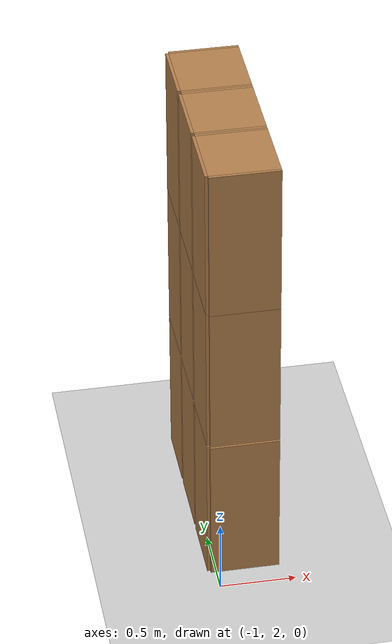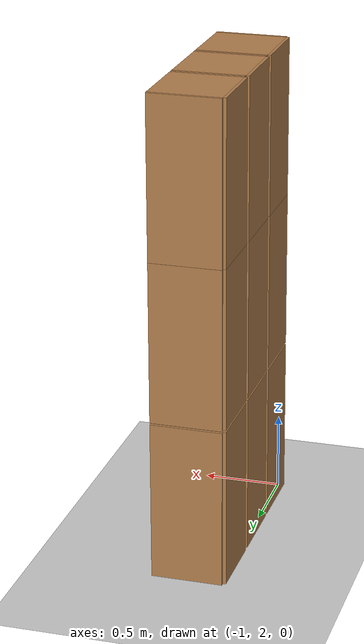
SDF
<sdf version="1.6">
 <world name="default">
  <model name="ground_plane">
   <static>1</static>
   <link name="link">
    <collision name="collision">
     <geometry><plane><normal>0 0 1</normal><size>100 100</size></plane></geometry>
     <surface>
      <contact><collide_bitmask>65535</collide_bitmask></contact>
      <friction><ode><mu>100</mu><mu2>50</mu2></ode></friction>
     </surface>
    </collision>
    <visual name="visual">
     <cast_shadows>0</cast_shadows>
     <geometry><plane><normal>0 0 1</normal><size>100 100</size></plane></geometry>
     <material>
      <script><uri>file://media/materials/scripts/gazebo.material</uri><name>Gazebo/Grey</name></script>
     </material>
    </visual>
   </link>
  </model>
  <model name="Locker18_clone_4_clone_2_clone_1_clone_clone_clone_2_clone_clone_1">
   <model name="Locker18">
    <model name="Locker3">
     <model name="cabinet">
      <static>1</static>
      <link name="cabinet_bottom_plate">
       <inertial>
        <pose>0 0 -1 0 -0 0</pose>
        <inertia><ixx>2.05</ixx><ixy>0</ixy><ixz>0</ixz><iyy>2.05</iyy><iyz>0</iyz><izz>2.05</izz></inertia>
        <mass>25</mass>
       </inertial>
       <collision name="cabinet_bottom_plate_geom">
        <pose>0 0 0.01 0 -0 0</pose>
        <geometry><box><size>0.45 0.45 0.02</size></box></geometry>
       </collision>
       <visual name="cabinet_bottom_plate_geom_visual">
        <pose>0 0 0.01 0 -0 0</pose>
        <geometry><box><size>0.45 0.45 0.02</size></box></geometry>
        <material>
         <script><uri>file://media/materials/scripts/gazebo.material</uri><name>Gazebo/Wood</name></script>
        </material>
       </visual>
       <collision name="cabinet_bottom_plate_geom_cabinet_back_plate">
        <pose>0.235 0 0.51 0 -0 0</pose>
        <geometry><box><size>0.02 0.45 1.02</size></box></geometry>
       </collision>
       <visual name="cabinet_bottom_plate_geom_cabinet_back_plate_visual">
        <pose>0.235 0 0.51 0 -0 0</pose>
        <geometry><box><size>0.02 0.45 1.02</size></box></geometry>
        <material>
         <script><uri>file://media/materials/scripts/gazebo.material</uri><name>Gazebo/Wood</name></script>
        </material>
       </visual>
       <collision name="cabinet_bottom_plate_geom_cabinet_left_plate">
        <pose>0 0.235 0.51 0 -0 0</pose>
        <geometry><box><size>0.45 0.02 1.02</size></box></geometry>
       </collision>
       <visual name="cabinet_bottom_plate_geom_cabinet_left_plate_visual">
        <pose>0 0.235 0.51 0 -0 0</pose>
        <geometry><box><size>0.45 0.02 1.02</size></box></geometry>
        <material>
         <script><uri>file://media/materials/scripts/gazebo.material</uri><name>Gazebo/Wood</name></script>
        </material>
       </visual>
       <collision name="cabinet_bottom_plate_geom_cabinet_middle_plate">
        <pose>0 0 0.51 0 -0 0</pose>
        <geometry><box><size>0.45 0.45 0.02</size></box></geometry>
       </collision>
       <visual name="cabinet_bottom_plate_geom_cabinet_middle_plate_visual">
        <pose>0 0 0.51 0 -0 0</pose>
        <geometry><box><size>0.45 0.45 0.02</size></box></geometry>
        <material>
         <script><uri>file://media/materials/scripts/gazebo.material</uri><name>Gazebo/Wood</name></script>
        </material>
       </visual>
       <collision name="cabinet_bottom_plate_geom_cabinet_right_plate">
        <pose>0 -0.235 0.51 0 -0 0</pose>
        <geometry><box><size>0.45 0.02 1.02</size></box></geometry>
       </collision>
       <visual name="cabinet_bottom_plate_geom_cabinet_right_plate_visual">
        <pose>0 -0.235 0.51 0 -0 0</pose>
        <geometry><box><size>0.45 0.02 1.02</size></box></geometry>
        <material>
         <script><uri>file://media/materials/scripts/gazebo.material</uri><name>Gazebo/Wood</name></script>
        </material>
       </visual>
       <collision name="cabinet_bottom_plate_geom_cabinet_top_plate">
        <pose>0 0 1.01 0 -0 0</pose>
        <geometry><box><size>0.45 0.45 0.02</size></box></geometry>
       </collision>
       <visual name="cabinet_bottom_plate_geom_cabinet_top_plate_visual">
        <pose>0 0 1.01 0 -0 0</pose>
        <geometry><box><size>0.45 0.45 0.02</size></box></geometry>
        <material>
         <script><uri>file://media/materials/scripts/gazebo.material</uri><name>Gazebo/Wood</name></script>
        </material>
       </visual>
      </link>
      <pose>-0.676968 1.45758 0 0 -0 0</pose>
     </model>
     <model name="cabinet_clone">
      <static>1</static>
      <link name="cabinet_bottom_plate">
       <inertial>
        <pose>0 0 -1 0 -0 0</pose>
        <inertia><ixx>2.05</ixx><ixy>0</ixy><ixz>0</ixz><iyy>2.05</iyy><iyz>0</iyz><izz>2.05</izz></inertia>
        <mass>25</mass>
       </inertial>
       <collision name="cabinet_bottom_plate_geom">
        <pose>0 0 0.01 0 -0 0</pose>
        <geometry><box><size>0.45 0.45 0.02</size></box></geometry>
       </collision>
       <visual name="cabinet_bottom_plate_geom_visual">
        <pose>0 0 0.01 0 -0 0</pose>
        <geometry><box><size>0.45 0.45 0.02</size></box></geometry>
        <material>
         <script><uri>file://media/materials/scripts/gazebo.material</uri><name>Gazebo/Wood</name></script>
        </material>
       </visual>
       <collision name="cabinet_bottom_plate_geom_cabinet_back_plate">
        <pose>0.235 0 0.51 0 -0 0</pose>
        <geometry><box><size>0.02 0.45 1.02</size></box></geometry>
       </collision>
       <visual name="cabinet_bottom_plate_geom_cabinet_back_plate_visual">
        <pose>0.235 0 0.51 0 -0 0</pose>
        <geometry><box><size>0.02 0.45 1.02</size></box></geometry>
        <material>
         <script><uri>file://media/materials/scripts/gazebo.material</uri><name>Gazebo/Wood</name></script>
        </material>
       </visual>
       <collision name="cabinet_bottom_plate_geom_cabinet_left_plate">
        <pose>0 0.235 0.51 0 -0 0</pose>
        <geometry><box><size>0.45 0.02 1.02</size></box></geometry>
       </collision>
       <visual name="cabinet_bottom_plate_geom_cabinet_left_plate_visual">
        <pose>0 0.235 0.51 0 -0 0</pose>
        <geometry><box><size>0.45 0.02 1.02</size></box></geometry>
        <material>
         <script><uri>file://media/materials/scripts/gazebo.material</uri><name>Gazebo/Wood</name></script>
        </material>
       </visual>
       <collision name="cabinet_bottom_plate_geom_cabinet_middle_plate">
        <pose>0 0 0.51 0 -0 0</pose>
        <geometry><box><size>0.45 0.45 0.02</size></box></geometry>
       </collision>
       <visual name="cabinet_bottom_plate_geom_cabinet_middle_plate_visual">
        <pose>0 0 0.51 0 -0 0</pose>
        <geometry><box><size>0.45 0.45 0.02</size></box></geometry>
        <material>
         <script><uri>file://media/materials/scripts/gazebo.material</uri><name>Gazebo/Wood</name></script>
        </material>
       </visual>
       <collision name="cabinet_bottom_plate_geom_cabinet_right_plate">
        <pose>0 -0.235 0.51 0 -0 0</pose>
        <geometry><box><size>0.45 0.02 1.02</size></box></geometry>
       </collision>
       <visual name="cabinet_bottom_plate_geom_cabinet_right_plate_visual">
        <pose>0 -0.235 0.51 0 -0 0</pose>
        <geometry><box><size>0.45 0.02 1.02</size></box></geometry>
        <material>
         <script><uri>file://media/materials/scripts/gazebo.material</uri><name>Gazebo/Wood</name></script>
        </material>
       </visual>
       <collision name="cabinet_bottom_plate_geom_cabinet_top_plate">
        <pose>0 0 1.01 0 -0 0</pose>
        <geometry><box><size>0.45 0.45 0.02</size></box></geometry>
       </collision>
       <visual name="cabinet_bottom_plate_geom_cabinet_top_plate_visual">
        <pose>0 0 1.01 0 -0 0</pose>
        <geometry><box><size>0.45 0.45 0.02</size></box></geometry>
        <material>
         <script><uri>file://media/materials/scripts/gazebo.material</uri><name>Gazebo/Wood</name></script>
        </material>
       </visual>
      </link>
      <pose>-0.676968 0.970971 0 0 -0 0</pose>
     </model>
     <model name="cabinet_clone_0">
      <static>1</static>
      <link name="cabinet_bottom_plate">
       <inertial>
        <pose>0 0 -1 0 -0 0</pose>
        <inertia><ixx>2.05</ixx><ixy>0</ixy><ixz>0</ixz><iyy>2.05</iyy><iyz>0</iyz><izz>2.05</izz></inertia>
        <mass>25</mass>
       </inertial>
       <collision name="cabinet_bottom_plate_geom">
        <pose>0 0 0.01 0 -0 0</pose>
        <geometry><box><size>0.45 0.45 0.02</size></box></geometry>
       </collision>
       <visual name="cabinet_bottom_plate_geom_visual">
        <pose>0 0 0.01 0 -0 0</pose>
        <geometry><box><size>0.45 0.45 0.02</size></box></geometry>
        <material>
         <script><uri>file://media/materials/scripts/gazebo.material</uri><name>Gazebo/Wood</name></script>
        </material>
       </visual>
       <collision name="cabinet_bottom_plate_geom_cabinet_back_plate">
        <pose>0.235 0 0.51 0 -0 0</pose>
        <geometry><box><size>0.02 0.45 1.02</size></box></geometry>
       </collision>
       <visual name="cabinet_bottom_plate_geom_cabinet_back_plate_visual">
        <pose>0.235 0 0.51 0 -0 0</pose>
        <geometry><box><size>0.02 0.45 1.02</size></box></geometry>
        <material>
         <script><uri>file://media/materials/scripts/gazebo.material</uri><name>Gazebo/Wood</name></script>
        </material>
       </visual>
       <collision name="cabinet_bottom_plate_geom_cabinet_left_plate">
        <pose>0 0.235 0.51 0 -0 0</pose>
        <geometry><box><size>0.45 0.02 1.02</size></box></geometry>
       </collision>
       <visual name="cabinet_bottom_plate_geom_cabinet_left_plate_visual">
        <pose>0 0.235 0.51 0 -0 0</pose>
        <geometry><box><size>0.45 0.02 1.02</size></box></geometry>
        <material>
         <script><uri>file://media/materials/scripts/gazebo.material</uri><name>Gazebo/Wood</name></script>
        </material>
       </visual>
       <collision name="cabinet_bottom_plate_geom_cabinet_middle_plate">
        <pose>0 0 0.51 0 -0 0</pose>
        <geometry><box><size>0.45 0.45 0.02</size></box></geometry>
       </collision>
       <visual name="cabinet_bottom_plate_geom_cabinet_middle_plate_visual">
        <pose>0 0 0.51 0 -0 0</pose>
        <geometry><box><size>0.45 0.45 0.02</size></box></geometry>
        <material>
         <script><uri>file://media/materials/scripts/gazebo.material</uri><name>Gazebo/Wood</name></script>
        </material>
       </visual>
       <collision name="cabinet_bottom_plate_geom_cabinet_right_plate">
        <pose>0 -0.235 0.51 0 -0 0</pose>
        <geometry><box><size>0.45 0.02 1.02</size></box></geometry>
       </collision>
       <visual name="cabinet_bottom_plate_geom_cabinet_right_plate_visual">
        <pose>0 -0.235 0.51 0 -0 0</pose>
        <geometry><box><size>0.45 0.02 1.02</size></box></geometry>
        <material>
         <script><uri>file://media/materials/scripts/gazebo.material</uri><name>Gazebo/Wood</name></script>
        </material>
       </visual>
       <collision name="cabinet_bottom_plate_geom_cabinet_top_plate">
        <pose>0 0 1.01 0 -0 0</pose>
        <geometry><box><size>0.45 0.45 0.02</size></box></geometry>
       </collision>
       <visual name="cabinet_bottom_plate_geom_cabinet_top_plate_visual">
        <pose>0 0 1.01 0 -0 0</pose>
        <geometry><box><size>0.45 0.45 0.02</size></box></geometry>
        <material>
         <script><uri>file://media/materials/scripts/gazebo.material</uri><name>Gazebo/Wood</name></script>
        </material>
       </visual>
      </link>
      <pose>-0.676968 0.48391 0 0 -0 0</pose>
     </model>
     <static>0</static>
     <pose>0 3e-06 -1.02763 0 -0 0</pose>
    </model>
    <model name="Locker3_clone">
     <model name="cabinet">
      <static>1</static>
      <link name="cabinet_bottom_plate">
       <inertial>
        <pose>0 0 -1 0 -0 0</pose>
        <inertia><ixx>2.05</ixx><ixy>0</ixy><ixz>0</ixz><iyy>2.05</iyy><iyz>0</iyz><izz>2.05</izz></inertia>
        <mass>25</mass>
       </inertial>
       <collision name="cabinet_bottom_plate_geom">
        <pose>0 0 0.01 0 -0 0</pose>
        <geometry><box><size>0.45 0.45 0.02</size></box></geometry>
       </collision>
       <visual name="cabinet_bottom_plate_geom_visual">
        <pose>0 0 0.01 0 -0 0</pose>
        <geometry><box><size>0.45 0.45 0.02</size></box></geometry>
        <material>
         <script><uri>file://media/materials/scripts/gazebo.material</uri><name>Gazebo/Wood</name></script>
        </material>
       </visual>
       <collision name="cabinet_bottom_plate_geom_cabinet_back_plate">
        <pose>0.235 0 0.51 0 -0 0</pose>
        <geometry><box><size>0.02 0.45 1.02</size></box></geometry>
       </collision>
       <visual name="cabinet_bottom_plate_geom_cabinet_back_plate_visual">
        <pose>0.235 0 0.51 0 -0 0</pose>
        <geometry><box><size>0.02 0.45 1.02</size></box></geometry>
        <material>
         <script><uri>file://media/materials/scripts/gazebo.material</uri><name>Gazebo/Wood</name></script>
        </material>
       </visual>
       <collision name="cabinet_bottom_plate_geom_cabinet_left_plate">
        <pose>0 0.235 0.51 0 -0 0</pose>
        <geometry><box><size>0.45 0.02 1.02</size></box></geometry>
       </collision>
       <visual name="cabinet_bottom_plate_geom_cabinet_left_plate_visual">
        <pose>0 0.235 0.51 0 -0 0</pose>
        <geometry><box><size>0.45 0.02 1.02</size></box></geometry>
        <material>
         <script><uri>file://media/materials/scripts/gazebo.material</uri><name>Gazebo/Wood</name></script>
        </material>
       </visual>
       <collision name="cabinet_bottom_plate_geom_cabinet_middle_plate">
        <pose>0 0 0.51 0 -0 0</pose>
        <geometry><box><size>0.45 0.45 0.02</size></box></geometry>
       </collision>
       <visual name="cabinet_bottom_plate_geom_cabinet_middle_plate_visual">
        <pose>0 0 0.51 0 -0 0</pose>
        <geometry><box><size>0.45 0.45 0.02</size></box></geometry>
        <material>
         <script><uri>file://media/materials/scripts/gazebo.material</uri><name>Gazebo/Wood</name></script>
        </material>
       </visual>
       <collision name="cabinet_bottom_plate_geom_cabinet_right_plate">
        <pose>0 -0.235 0.51 0 -0 0</pose>
        <geometry><box><size>0.45 0.02 1.02</size></box></geometry>
       </collision>
       <visual name="cabinet_bottom_plate_geom_cabinet_right_plate_visual">
        <pose>0 -0.235 0.51 0 -0 0</pose>
        <geometry><box><size>0.45 0.02 1.02</size></box></geometry>
        <material>
         <script><uri>file://media/materials/scripts/gazebo.material</uri><name>Gazebo/Wood</name></script>
        </material>
       </visual>
       <collision name="cabinet_bottom_plate_geom_cabinet_top_plate">
        <pose>0 0 1.01 0 -0 0</pose>
        <geometry><box><size>0.45 0.45 0.02</size></box></geometry>
       </collision>
       <visual name="cabinet_bottom_plate_geom_cabinet_top_plate_visual">
        <pose>0 0 1.01 0 -0 0</pose>
        <geometry><box><size>0.45 0.45 0.02</size></box></geometry>
        <material>
         <script><uri>file://media/materials/scripts/gazebo.material</uri><name>Gazebo/Wood</name></script>
        </material>
       </visual>
      </link>
      <pose>-0.676968 1.45758 0 0 -0 0</pose>
     </model>
     <model name="cabinet_clone">
      <static>1</static>
      <link name="cabinet_bottom_plate">
       <inertial>
        <pose>0 0 -1 0 -0 0</pose>
        <inertia><ixx>2.05</ixx><ixy>0</ixy><ixz>0</ixz><iyy>2.05</iyy><iyz>0</iyz><izz>2.05</izz></inertia>
        <mass>25</mass>
       </inertial>
       <collision name="cabinet_bottom_plate_geom">
        <pose>0 0 0.01 0 -0 0</pose>
        <geometry><box><size>0.45 0.45 0.02</size></box></geometry>
       </collision>
       <visual name="cabinet_bottom_plate_geom_visual">
        <pose>0 0 0.01 0 -0 0</pose>
        <geometry><box><size>0.45 0.45 0.02</size></box></geometry>
        <material>
         <script><uri>file://media/materials/scripts/gazebo.material</uri><name>Gazebo/Wood</name></script>
        </material>
       </visual>
       <collision name="cabinet_bottom_plate_geom_cabinet_back_plate">
        <pose>0.235 0 0.51 0 -0 0</pose>
        <geometry><box><size>0.02 0.45 1.02</size></box></geometry>
       </collision>
       <visual name="cabinet_bottom_plate_geom_cabinet_back_plate_visual">
        <pose>0.235 0 0.51 0 -0 0</pose>
        <geometry><box><size>0.02 0.45 1.02</size></box></geometry>
        <material>
         <script><uri>file://media/materials/scripts/gazebo.material</uri><name>Gazebo/Wood</name></script>
        </material>
       </visual>
       <collision name="cabinet_bottom_plate_geom_cabinet_left_plate">
        <pose>0 0.235 0.51 0 -0 0</pose>
        <geometry><box><size>0.45 0.02 1.02</size></box></geometry>
       </collision>
       <visual name="cabinet_bottom_plate_geom_cabinet_left_plate_visual">
        <pose>0 0.235 0.51 0 -0 0</pose>
        <geometry><box><size>0.45 0.02 1.02</size></box></geometry>
        <material>
         <script><uri>file://media/materials/scripts/gazebo.material</uri><name>Gazebo/Wood</name></script>
        </material>
       </visual>
       <collision name="cabinet_bottom_plate_geom_cabinet_middle_plate">
        <pose>0 0 0.51 0 -0 0</pose>
        <geometry><box><size>0.45 0.45 0.02</size></box></geometry>
       </collision>
       <visual name="cabinet_bottom_plate_geom_cabinet_middle_plate_visual">
        <pose>0 0 0.51 0 -0 0</pose>
        <geometry><box><size>0.45 0.45 0.02</size></box></geometry>
        <material>
         <script><uri>file://media/materials/scripts/gazebo.material</uri><name>Gazebo/Wood</name></script>
        </material>
       </visual>
       <collision name="cabinet_bottom_plate_geom_cabinet_right_plate">
        <pose>0 -0.235 0.51 0 -0 0</pose>
        <geometry><box><size>0.45 0.02 1.02</size></box></geometry>
       </collision>
       <visual name="cabinet_bottom_plate_geom_cabinet_right_plate_visual">
        <pose>0 -0.235 0.51 0 -0 0</pose>
        <geometry><box><size>0.45 0.02 1.02</size></box></geometry>
        <material>
         <script><uri>file://media/materials/scripts/gazebo.material</uri><name>Gazebo/Wood</name></script>
        </material>
       </visual>
       <collision name="cabinet_bottom_plate_geom_cabinet_top_plate">
        <pose>0 0 1.01 0 -0 0</pose>
        <geometry><box><size>0.45 0.45 0.02</size></box></geometry>
       </collision>
       <visual name="cabinet_bottom_plate_geom_cabinet_top_plate_visual">
        <pose>0 0 1.01 0 -0 0</pose>
        <geometry><box><size>0.45 0.45 0.02</size></box></geometry>
        <material>
         <script><uri>file://media/materials/scripts/gazebo.material</uri><name>Gazebo/Wood</name></script>
        </material>
       </visual>
      </link>
      <pose>-0.676968 0.970971 0 0 -0 0</pose>
     </model>
     <model name="cabinet_clone_0">
      <static>1</static>
      <link name="cabinet_bottom_plate">
       <inertial>
        <pose>0 0 -1 0 -0 0</pose>
        <inertia><ixx>2.05</ixx><ixy>0</ixy><ixz>0</ixz><iyy>2.05</iyy><iyz>0</iyz><izz>2.05</izz></inertia>
        <mass>25</mass>
       </inertial>
       <collision name="cabinet_bottom_plate_geom">
        <pose>0 0 0.01 0 -0 0</pose>
        <geometry><box><size>0.45 0.45 0.02</size></box></geometry>
       </collision>
       <visual name="cabinet_bottom_plate_geom_visual">
        <pose>0 0 0.01 0 -0 0</pose>
        <geometry><box><size>0.45 0.45 0.02</size></box></geometry>
        <material>
         <script><uri>file://media/materials/scripts/gazebo.material</uri><name>Gazebo/Wood</name></script>
        </material>
       </visual>
       <collision name="cabinet_bottom_plate_geom_cabinet_back_plate">
        <pose>0.235 0 0.51 0 -0 0</pose>
        <geometry><box><size>0.02 0.45 1.02</size></box></geometry>
       </collision>
       <visual name="cabinet_bottom_plate_geom_cabinet_back_plate_visual">
        <pose>0.235 0 0.51 0 -0 0</pose>
        <geometry><box><size>0.02 0.45 1.02</size></box></geometry>
        <material>
         <script><uri>file://media/materials/scripts/gazebo.material</uri><name>Gazebo/Wood</name></script>
        </material>
       </visual>
       <collision name="cabinet_bottom_plate_geom_cabinet_left_plate">
        <pose>0 0.235 0.51 0 -0 0</pose>
        <geometry><box><size>0.45 0.02 1.02</size></box></geometry>
       </collision>
       <visual name="cabinet_bottom_plate_geom_cabinet_left_plate_visual">
        <pose>0 0.235 0.51 0 -0 0</pose>
        <geometry><box><size>0.45 0.02 1.02</size></box></geometry>
        <material>
         <script><uri>file://media/materials/scripts/gazebo.material</uri><name>Gazebo/Wood</name></script>
        </material>
       </visual>
       <collision name="cabinet_bottom_plate_geom_cabinet_middle_plate">
        <pose>0 0 0.51 0 -0 0</pose>
        <geometry><box><size>0.45 0.45 0.02</size></box></geometry>
       </collision>
       <visual name="cabinet_bottom_plate_geom_cabinet_middle_plate_visual">
        <pose>0 0 0.51 0 -0 0</pose>
        <geometry><box><size>0.45 0.45 0.02</size></box></geometry>
        <material>
         <script><uri>file://media/materials/scripts/gazebo.material</uri><name>Gazebo/Wood</name></script>
        </material>
       </visual>
       <collision name="cabinet_bottom_plate_geom_cabinet_right_plate">
        <pose>0 -0.235 0.51 0 -0 0</pose>
        <geometry><box><size>0.45 0.02 1.02</size></box></geometry>
       </collision>
       <visual name="cabinet_bottom_plate_geom_cabinet_right_plate_visual">
        <pose>0 -0.235 0.51 0 -0 0</pose>
        <geometry><box><size>0.45 0.02 1.02</size></box></geometry>
        <material>
         <script><uri>file://media/materials/scripts/gazebo.material</uri><name>Gazebo/Wood</name></script>
        </material>
       </visual>
       <collision name="cabinet_bottom_plate_geom_cabinet_top_plate">
        <pose>0 0 1.01 0 -0 0</pose>
        <geometry><box><size>0.45 0.45 0.02</size></box></geometry>
       </collision>
       <visual name="cabinet_bottom_plate_geom_cabinet_top_plate_visual">
        <pose>0 0 1.01 0 -0 0</pose>
        <geometry><box><size>0.45 0.45 0.02</size></box></geometry>
        <material>
         <script><uri>file://media/materials/scripts/gazebo.material</uri><name>Gazebo/Wood</name></script>
        </material>
       </visual>
      </link>
      <pose>-0.676968 0.48391 0 0 -0 0</pose>
     </model>
     <static>0</static>
     <pose>0 3e-06 0.003717 0 -0 0</pose>
    </model>
    <model name="Locker3_clone_clone">
     <model name="cabinet">
      <static>1</static>
      <link name="cabinet_bottom_plate">
       <inertial>
        <pose>0 0 -1 0 -0 0</pose>
        <inertia><ixx>2.05</ixx><ixy>0</ixy><ixz>0</ixz><iyy>2.05</iyy><iyz>0</iyz><izz>2.05</izz></inertia>
        <mass>25</mass>
       </inertial>
       <collision name="cabinet_bottom_plate_geom">
        <pose>0 0 0.01 0 -0 0</pose>
        <geometry><box><size>0.45 0.45 0.02</size></box></geometry>
       </collision>
       <visual name="cabinet_bottom_plate_geom_visual">
        <pose>0 0 0.01 0 -0 0</pose>
        <geometry><box><size>0.45 0.45 0.02</size></box></geometry>
        <material>
         <script><uri>file://media/materials/scripts/gazebo.material</uri><name>Gazebo/Wood</name></script>
        </material>
       </visual>
       <collision name="cabinet_bottom_plate_geom_cabinet_back_plate">
        <pose>0.235 0 0.51 0 -0 0</pose>
        <geometry><box><size>0.02 0.45 1.02</size></box></geometry>
       </collision>
       <visual name="cabinet_bottom_plate_geom_cabinet_back_plate_visual">
        <pose>0.235 0 0.51 0 -0 0</pose>
        <geometry><box><size>0.02 0.45 1.02</size></box></geometry>
        <material>
         <script><uri>file://media/materials/scripts/gazebo.material</uri><name>Gazebo/Wood</name></script>
        </material>
       </visual>
       <collision name="cabinet_bottom_plate_geom_cabinet_left_plate">
        <pose>0 0.235 0.51 0 -0 0</pose>
        <geometry><box><size>0.45 0.02 1.02</size></box></geometry>
       </collision>
       <visual name="cabinet_bottom_plate_geom_cabinet_left_plate_visual">
        <pose>0 0.235 0.51 0 -0 0</pose>
        <geometry><box><size>0.45 0.02 1.02</size></box></geometry>
        <material>
         <script><uri>file://media/materials/scripts/gazebo.material</uri><name>Gazebo/Wood</name></script>
        </material>
       </visual>
       <collision name="cabinet_bottom_plate_geom_cabinet_middle_plate">
        <pose>0 0 0.51 0 -0 0</pose>
        <geometry><box><size>0.45 0.45 0.02</size></box></geometry>
       </collision>
       <visual name="cabinet_bottom_plate_geom_cabinet_middle_plate_visual">
        <pose>0 0 0.51 0 -0 0</pose>
        <geometry><box><size>0.45 0.45 0.02</size></box></geometry>
        <material>
         <script><uri>file://media/materials/scripts/gazebo.material</uri><name>Gazebo/Wood</name></script>
        </material>
       </visual>
       <collision name="cabinet_bottom_plate_geom_cabinet_right_plate">
        <pose>0 -0.235 0.51 0 -0 0</pose>
        <geometry><box><size>0.45 0.02 1.02</size></box></geometry>
       </collision>
       <visual name="cabinet_bottom_plate_geom_cabinet_right_plate_visual">
        <pose>0 -0.235 0.51 0 -0 0</pose>
        <geometry><box><size>0.45 0.02 1.02</size></box></geometry>
        <material>
         <script><uri>file://media/materials/scripts/gazebo.material</uri><name>Gazebo/Wood</name></script>
        </material>
       </visual>
       <collision name="cabinet_bottom_plate_geom_cabinet_top_plate">
        <pose>0 0 1.01 0 -0 0</pose>
        <geometry><box><size>0.45 0.45 0.02</size></box></geometry>
       </collision>
       <visual name="cabinet_bottom_plate_geom_cabinet_top_plate_visual">
        <pose>0 0 1.01 0 -0 0</pose>
        <geometry><box><size>0.45 0.45 0.02</size></box></geometry>
        <material>
         <script><uri>file://media/materials/scripts/gazebo.material</uri><name>Gazebo/Wood</name></script>
        </material>
       </visual>
      </link>
      <pose>-0.676968 1.45758 0 0 -0 0</pose>
     </model>
     <model name="cabinet_clone">
      <static>1</static>
      <link name="cabinet_bottom_plate">
       <inertial>
        <pose>0 0 -1 0 -0 0</pose>
        <inertia><ixx>2.05</ixx><ixy>0</ixy><ixz>0</ixz><iyy>2.05</iyy><iyz>0</iyz><izz>2.05</izz></inertia>
        <mass>25</mass>
       </inertial>
       <collision name="cabinet_bottom_plate_geom">
        <pose>0 0 0.01 0 -0 0</pose>
        <geometry><box><size>0.45 0.45 0.02</size></box></geometry>
       </collision>
       <visual name="cabinet_bottom_plate_geom_visual">
        <pose>0 0 0.01 0 -0 0</pose>
        <geometry><box><size>0.45 0.45 0.02</size></box></geometry>
        <material>
         <script><uri>file://media/materials/scripts/gazebo.material</uri><name>Gazebo/Wood</name></script>
        </material>
       </visual>
       <collision name="cabinet_bottom_plate_geom_cabinet_back_plate">
        <pose>0.235 0 0.51 0 -0 0</pose>
        <geometry><box><size>0.02 0.45 1.02</size></box></geometry>
       </collision>
       <visual name="cabinet_bottom_plate_geom_cabinet_back_plate_visual">
        <pose>0.235 0 0.51 0 -0 0</pose>
        <geometry><box><size>0.02 0.45 1.02</size></box></geometry>
        <material>
         <script><uri>file://media/materials/scripts/gazebo.material</uri><name>Gazebo/Wood</name></script>
        </material>
       </visual>
       <collision name="cabinet_bottom_plate_geom_cabinet_left_plate">
        <pose>0 0.235 0.51 0 -0 0</pose>
        <geometry><box><size>0.45 0.02 1.02</size></box></geometry>
       </collision>
       <visual name="cabinet_bottom_plate_geom_cabinet_left_plate_visual">
        <pose>0 0.235 0.51 0 -0 0</pose>
        <geometry><box><size>0.45 0.02 1.02</size></box></geometry>
        <material>
         <script><uri>file://media/materials/scripts/gazebo.material</uri><name>Gazebo/Wood</name></script>
        </material>
       </visual>
       <collision name="cabinet_bottom_plate_geom_cabinet_middle_plate">
        <pose>0 0 0.51 0 -0 0</pose>
        <geometry><box><size>0.45 0.45 0.02</size></box></geometry>
       </collision>
       <visual name="cabinet_bottom_plate_geom_cabinet_middle_plate_visual">
        <pose>0 0 0.51 0 -0 0</pose>
        <geometry><box><size>0.45 0.45 0.02</size></box></geometry>
        <material>
         <script><uri>file://media/materials/scripts/gazebo.material</uri><name>Gazebo/Wood</name></script>
        </material>
       </visual>
       <collision name="cabinet_bottom_plate_geom_cabinet_right_plate">
        <pose>0 -0.235 0.51 0 -0 0</pose>
        <geometry><box><size>0.45 0.02 1.02</size></box></geometry>
       </collision>
       <visual name="cabinet_bottom_plate_geom_cabinet_right_plate_visual">
        <pose>0 -0.235 0.51 0 -0 0</pose>
        <geometry><box><size>0.45 0.02 1.02</size></box></geometry>
        <material>
         <script><uri>file://media/materials/scripts/gazebo.material</uri><name>Gazebo/Wood</name></script>
        </material>
       </visual>
       <collision name="cabinet_bottom_plate_geom_cabinet_top_plate">
        <pose>0 0 1.01 0 -0 0</pose>
        <geometry><box><size>0.45 0.45 0.02</size></box></geometry>
       </collision>
       <visual name="cabinet_bottom_plate_geom_cabinet_top_plate_visual">
        <pose>0 0 1.01 0 -0 0</pose>
        <geometry><box><size>0.45 0.45 0.02</size></box></geometry>
        <material>
         <script><uri>file://media/materials/scripts/gazebo.material</uri><name>Gazebo/Wood</name></script>
        </material>
       </visual>
      </link>
      <pose>-0.676968 0.970971 0 0 -0 0</pose>
     </model>
     <model name="cabinet_clone_0">
      <static>1</static>
      <link name="cabinet_bottom_plate">
       <inertial>
        <pose>0 0 -1 0 -0 0</pose>
        <inertia><ixx>2.05</ixx><ixy>0</ixy><ixz>0</ixz><iyy>2.05</iyy><iyz>0</iyz><izz>2.05</izz></inertia>
        <mass>25</mass>
       </inertial>
       <collision name="cabinet_bottom_plate_geom">
        <pose>0 0 0.01 0 -0 0</pose>
        <geometry><box><size>0.45 0.45 0.02</size></box></geometry>
       </collision>
       <visual name="cabinet_bottom_plate_geom_visual">
        <pose>0 0 0.01 0 -0 0</pose>
        <geometry><box><size>0.45 0.45 0.02</size></box></geometry>
        <material>
         <script><uri>file://media/materials/scripts/gazebo.material</uri><name>Gazebo/Wood</name></script>
        </material>
       </visual>
       <collision name="cabinet_bottom_plate_geom_cabinet_back_plate">
        <pose>0.235 0 0.51 0 -0 0</pose>
        <geometry><box><size>0.02 0.45 1.02</size></box></geometry>
       </collision>
       <visual name="cabinet_bottom_plate_geom_cabinet_back_plate_visual">
        <pose>0.235 0 0.51 0 -0 0</pose>
        <geometry><box><size>0.02 0.45 1.02</size></box></geometry>
        <material>
         <script><uri>file://media/materials/scripts/gazebo.material</uri><name>Gazebo/Wood</name></script>
        </material>
       </visual>
       <collision name="cabinet_bottom_plate_geom_cabinet_left_plate">
        <pose>0 0.235 0.51 0 -0 0</pose>
        <geometry><box><size>0.45 0.02 1.02</size></box></geometry>
       </collision>
       <visual name="cabinet_bottom_plate_geom_cabinet_left_plate_visual">
        <pose>0 0.235 0.51 0 -0 0</pose>
        <geometry><box><size>0.45 0.02 1.02</size></box></geometry>
        <material>
         <script><uri>file://media/materials/scripts/gazebo.material</uri><name>Gazebo/Wood</name></script>
        </material>
       </visual>
       <collision name="cabinet_bottom_plate_geom_cabinet_middle_plate">
        <pose>0 0 0.51 0 -0 0</pose>
        <geometry><box><size>0.45 0.45 0.02</size></box></geometry>
       </collision>
       <visual name="cabinet_bottom_plate_geom_cabinet_middle_plate_visual">
        <pose>0 0 0.51 0 -0 0</pose>
        <geometry><box><size>0.45 0.45 0.02</size></box></geometry>
        <material>
         <script><uri>file://media/materials/scripts/gazebo.material</uri><name>Gazebo/Wood</name></script>
        </material>
       </visual>
       <collision name="cabinet_bottom_plate_geom_cabinet_right_plate">
        <pose>0 -0.235 0.51 0 -0 0</pose>
        <geometry><box><size>0.45 0.02 1.02</size></box></geometry>
       </collision>
       <visual name="cabinet_bottom_plate_geom_cabinet_right_plate_visual">
        <pose>0 -0.235 0.51 0 -0 0</pose>
        <geometry><box><size>0.45 0.02 1.02</size></box></geometry>
        <material>
         <script><uri>file://media/materials/scripts/gazebo.material</uri><name>Gazebo/Wood</name></script>
        </material>
       </visual>
       <collision name="cabinet_bottom_plate_geom_cabinet_top_plate">
        <pose>0 0 1.01 0 -0 0</pose>
        <geometry><box><size>0.45 0.45 0.02</size></box></geometry>
       </collision>
       <visual name="cabinet_bottom_plate_geom_cabinet_top_plate_visual">
        <pose>0 0 1.01 0 -0 0</pose>
        <geometry><box><size>0.45 0.45 0.02</size></box></geometry>
        <material>
         <script><uri>file://media/materials/scripts/gazebo.material</uri><name>Gazebo/Wood</name></script>
        </material>
       </visual>
      </link>
      <pose>-0.676968 0.48391 0 0 -0 0</pose>
     </model>
     <static>0</static>
     <pose>0 3e-06 1.02391 0 -0 0</pose>
    </model>
    <static>0</static>
    <pose>-0 4e-06 4e-06 0 -0 0</pose>
   </model>
   <static>0</static>
   <pose>-1.4992 3.78251 1.08672 0 -0 3.14119</pose>
  </model>
 </world>
</sdf>
